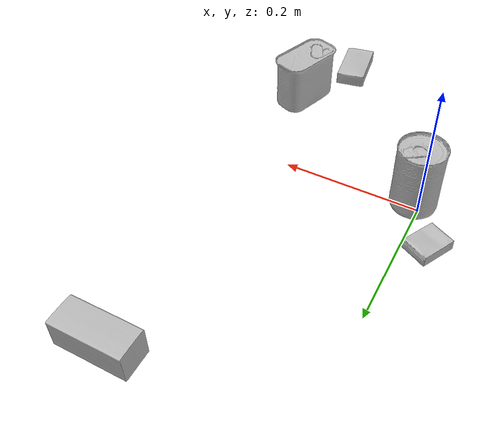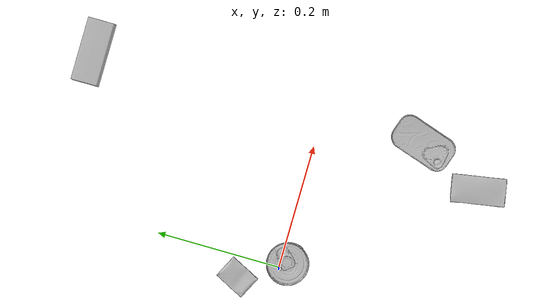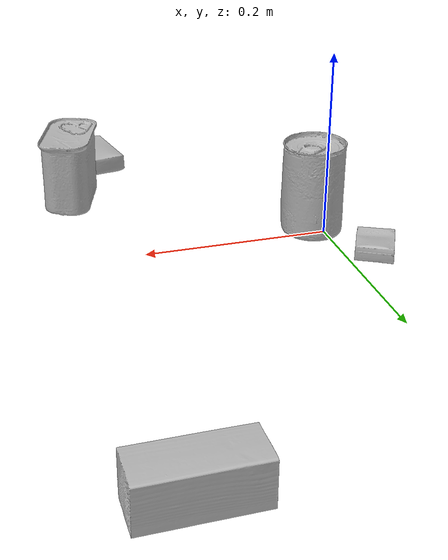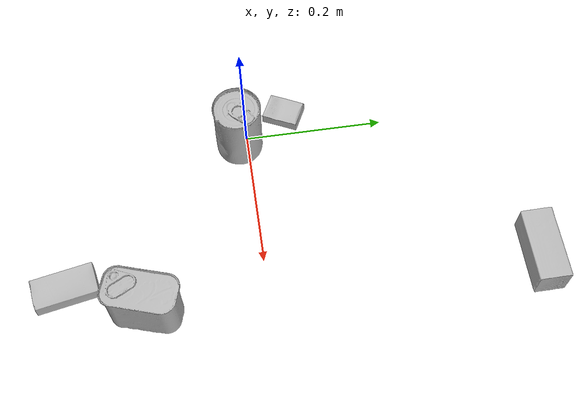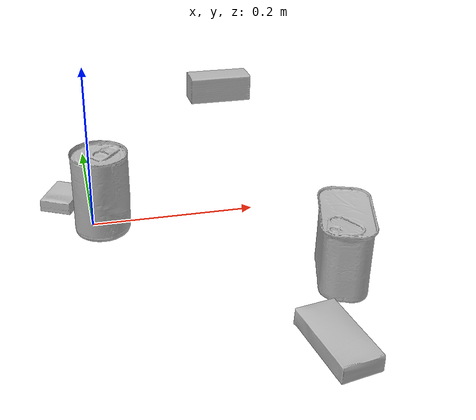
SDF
<sdf version="1.4">
  <world name="default">
    <light name="light1" type="point">
      <pose>0 0 1 0 0 0</pose>
      <diffuse>3 3 3 1</diffuse>
      <specular>3 3 3 1</specular>
    </light>
    <light name="light2" type="point">
      <pose>0 0.5 2 0 0 0</pose>
      <diffuse>1 1 1 1</diffuse>
      <specular>1 1 1 1</specular>
    </light>
    <light name="light3" type="point">
      <pose>0 0.5 2 0 0 0</pose>
      <diffuse>3 3 3 1</diffuse>
      <specular>3 3 3 1</specular>
    </light>
    <scene>
      <ambient>0.7 0.7 0.7</ambient>
    </scene>
    <model name="box1">
      <link name="link_box1">
        <collision name="default">
          <geometry>
            <mesh>
              <uri>model://sugar_box/collision_meshes/collision.obj</uri>
              <scale>0.5 0.5 0.5</scale>
            </mesh>
          </geometry>
          <surface>
            <friction>
              <ode>
                <mu>0.5</mu>
                <mu2>0.5</mu2>
              </ode>
            </friction>
          <contact>
        <ode>
            <max_vel>0</max_vel>
            <min_depth>0.0001</min_depth>
            <kp>1e8</kp>
        </ode>
    </contact></surface>
        </collision>
        <visual name="default">
          <geometry>
            <mesh>
              <uri>model://sugar_box/visual_meshes/visual.dae</uri>
              <scale>0.5 0.5 0.5</scale>
            </mesh>
          </geometry>
        </visual>
        <inertial>
          <mass>0.048160675913095474</mass>
          <pose>0.0005171863595023751 1.924554817378521e-05 -0.00018182402709499002 -0.0004046258638373534 0.0010506635215919557 0.0026153787891515894</pose>
          <inertia>
            <ixx>1.0031835e-05</ixx>
            <iyy>3.2424945e-05</iyy>
            <izz>3.8816543e-05</izz>
            <ixy>0</ixy>
            <ixz>0</ixz>
            <iyz>0</iyz>
          </inertia>
        </inertial>
      </link>
      <pose>0.20588618516921997 -0.27081531286239624 0.011399309150874615 0.0007752637555379755 -0.02343239258317043 1.7411508239208306</pose>
    </model>
    <model name="box2">
      <link name="link_box2">
        <collision name="default">
          <geometry>
            <mesh>
              <uri>model://cracker_box/collision_meshes/collision.obj</uri>
              <scale>0.25 0.25 0.25</scale>
            </mesh>
          </geometry>
          <surface>
            <friction>
              <ode>
                <mu>0.5</mu>
                <mu2>0.5</mu2>
              </ode>
            </friction>
          <contact>
        <ode>
            <max_vel>0</max_vel>
            <min_depth>0.0001</min_depth>
            <kp>1e8</kp>
        </ode>
    </contact></surface>
        </collision>
        <visual name="default">
          <geometry>
            <mesh>
              <uri>model://cracker_box/visual_meshes/visual.dae</uri>
              <scale>0.25 0.25 0.25</scale>
            </mesh>
          </geometry>
        </visual>
        <inertial>
          <mass>0.047952666878700256</mass>
          <pose>0.00023660370789002627 6.358561950037256e-05 -0.0004257383698131889 -0.0003162075404896153 -0.011106488669099107 0.002546795234185617</pose>
          <inertia>
            <ixx>7.623136e-06</ixx>
            <iyy>1.2587296e-05</iyy>
            <izz>1.7963224e-05</izz>
            <ixy>0</ixy>
            <ixz>0</ixz>
            <iyz>0</iyz>
          </inertia>
        </inertial>
      </link>
      <pose>-0.03264421224594116 0.05975378677248955 0.009120449423789978 -0.01178794732754612 -0.007367205875044225 1.1044124235564028</pose>
    </model>
    <model name="box3">
      <link name="link_box3">
        <collision name="default">
          <geometry>
            <mesh>
              <uri>model://wood_block/collision_meshes/collision.obj</uri>
              <scale>0.5 0.5 0.5</scale>
            </mesh>
          </geometry>
          <surface>
            <friction>
              <ode>
                <mu>0.5</mu>
                <mu2>0.5</mu2>
              </ode>
            </friction>
          <contact>
        <ode>
            <max_vel>0</max_vel>
            <min_depth>0.0001</min_depth>
            <kp>1e8</kp>
        </ode>
    </contact></surface>
        </collision>
        <visual name="default">
          <geometry>
            <mesh>
              <uri>model://wood_block/visual_meshes/visual.dae</uri>
              <scale>0.5 0.5 0.5</scale>
            </mesh>
          </geometry>
        </visual>
        <inertial>
          <mass>0.27162742614746094</mass>
          <pose>-2.9066577553749084e-06 -0.000285404734313488 0.00013204291462898254 -0.05220780121661256 -0.005192696561201931 -0.006861379819720353</pose>
          <inertia>
            <ixx>9.086965e-05</ixx>
            <iyy>0.00028705722</iyy>
            <izz>0.0002859835</izz>
            <ixy>0</ixy>
            <ixz>0</ixz>
            <iyz>0</iyz>
          </inertia>
        </inertial>
      </link>
      <pose>0.24822553992271423 0.3779960572719574 0.022629261016845703 -0.005208560412053263 0.00571873293943858 0.0048205071175204195</pose>
    </model>
    <model name="can1">
      <link name="link_can1">
        <collision name="default">
          <geometry>
            <mesh>
              <uri>model://tomato_soup_can/collision_meshes/collision.obj</uri>
              <scale>1.0 1.0 1.0</scale>
            </mesh>
          </geometry>
          <surface>
            <friction>
              <ode>
                <mu>0.5</mu>
                <mu2>0.5</mu2>
              </ode>
            </friction>
          <contact>
        <ode>
            <max_vel>0</max_vel>
            <min_depth>0.0001</min_depth>
            <kp>1e8</kp>
        </ode>
    </contact></surface>
        </collision>
        <visual name="default">
          <geometry>
            <mesh>
              <uri>model://tomato_soup_can/visual_meshes/visual.dae</uri>
              <scale>1.0 1.0 1.0</scale>
            </mesh>
          </geometry>
        </visual>
        <inertial>
          <mass>0.33680883049964905</mass>
          <pose>0.0001265227037947625 0.0001080552683561109 -0.0017973986687138677 0.007020065933643549 0.0004229964102555597 -0.009903579397299064</pose>
          <inertia>
            <ixx>0.00036928226</ixx>
            <iyy>0.0003671481</iyy>
            <izz>0.00019139561</izz>
            <ixy>0</ixy>
            <ixz>0</ixz>
            <iyz>0</iyz>
          </inertia>
        </inertial>
      </link>
      <pose>0.011161445640027523 -0.01094074733555317 0.05127402022480965 -4.258387757810939e-07 -7.359383415518542e-07 1.9862847852795502</pose>
    </model>
    <model name="can2">
      <link name="link_can2">
        <collision name="default">
          <geometry>
            <mesh>
              <uri>model://potted_meat_can/collision_meshes/collision.obj</uri>
              <scale>1.0 1.0 1.0</scale>
            </mesh>
          </geometry>
          <surface>
            <friction>
              <ode>
                <mu>0.5</mu>
                <mu2>0.5</mu2>
              </ode>
            </friction>
          <contact>
        <ode>
            <max_vel>0</max_vel>
            <min_depth>0.0001</min_depth>
            <kp>1e8</kp>
        </ode>
    </contact></surface>
        </collision>
        <visual name="default">
          <geometry>
            <mesh>
              <uri>model://potted_meat_can/visual_meshes/visual.dae</uri>
              <scale>1.0 1.0 1.0</scale>
            </mesh>
          </geometry>
        </visual>
        <inertial>
          <mass>0.5009446144104004</mass>
          <pose>0.00022888141393195838 -5.9891164710279554e-05 -0.0006367440801113844 -0.028093347044227477 -0.007232596108467961 0.015406262357490775</pose>
          <inertia>
            <ixx>0.0006444129</ixx>
            <iyy>0.0003915297</iyy>
            <izz>0.00046868768</izz>
            <ixy>0</ixy>
            <ixz>0</ixz>
            <iyz>0</iyz>
          </inertia>
        </inertial>
      </link>
      <pose>0.2525946795940399 -0.1635395884513855 0.04212801530957222 5.6154414767355894e-08 -3.877172369094804e-07 -0.32094974028913353</pose>
    </model>
  <physics type="ode">
      <max_contacts>50</max_contacts>
      <ode>
        <solver>
          <type>quick</type>
          <iters>75</iters>
        </solver>
        <constraints>
          <contact_max_correcting_vel>0</contact_max_correcting_vel>
          <contact_surface_layer>0</contact_surface_layer>
        </constraints>
      </ode>
    </physics></world>
</sdf>
